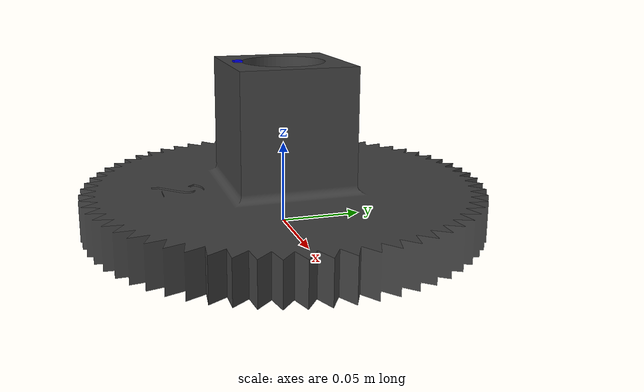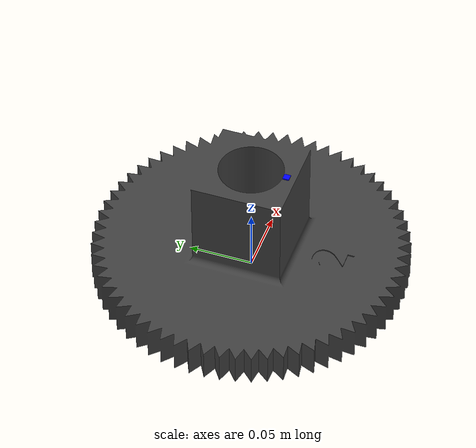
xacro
<?xml version="1.0" ?>
<robot name="second_gear" xmlns:xacro="http://wiki.ros.org/xacro" >

    <link name="second_gear">
        <visual>
            <origin rpy="0 0 0" xyz="0 0 0"/>
            <geometry>
                <mesh filename="file://$(find sirgas_description)/meshes/Second_Gear.stl" />
            </geometry>
            <material name="DarkGrey">
                <color rgba="0.25 0.25 0.25 1.0" />
            </material>
        </visual>
        <collision>
            <origin rpy="0 0 0" xyz="0 0 0"/>
            <geometry>
                <mesh filename="file://$(find sirgas_description)/meshes/Second_Gear.stl" />
            </geometry>
        </collision>
        <inertial>
            <mass value="1.141"/>
            <origin rpy="0 0 0" xyz="0 0 0.01359774"/>
            <inertia ixx="0.00406128" ixy="0.0" ixz="0.0" iyx="0.0" iyy="0.00406281" iyz="0.0" izx="0.0" izy= "0.0" izz="0.00794573"/>
        </inertial>
    </link>

    <!-- Liner Info -->
    <link name="liner6">
        <visual>
            <origin rpy="0 0 0" xyz="0 0 0"/>
            <geometry>
                <box size="0.005 0.005 0.001"/>
            </geometry>
            <material name="Blue">
                <color rgba="0 0 1.0 1.0" />
            </material>
        </visual>
    </link>

    <joint name="liner6_pb2" type="fixed">
        <parent link="second_gear"/>
        <child link="liner6"/>
        <origin rpy="0 0 0" xyz="0.0 -0.028 0.101"/>
        <axis xyz="0 0 1"/>
    </joint>

</robot>
